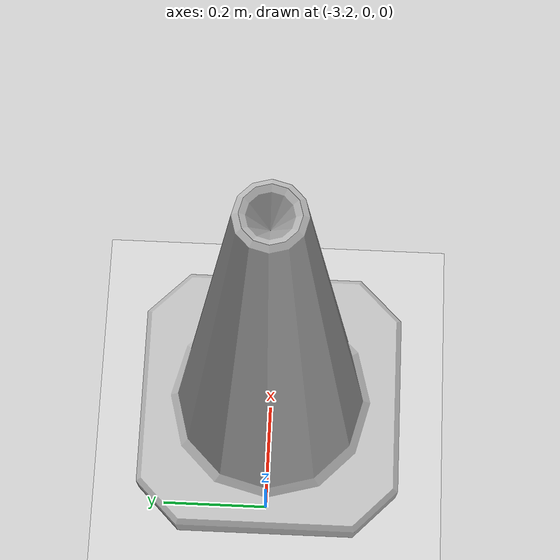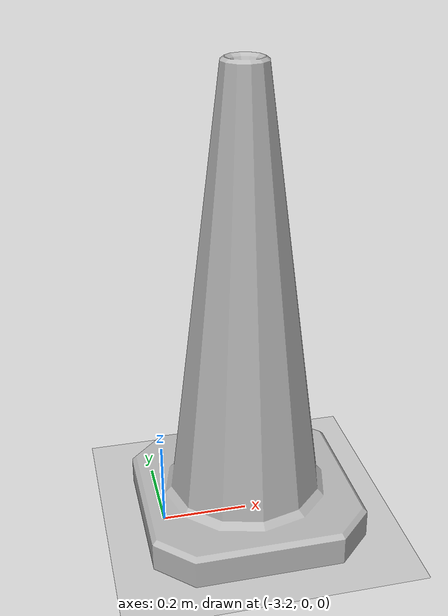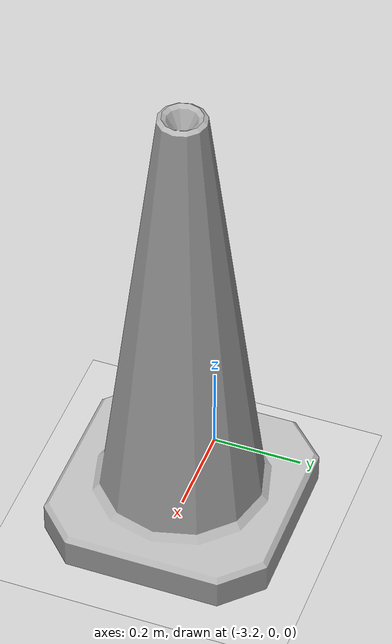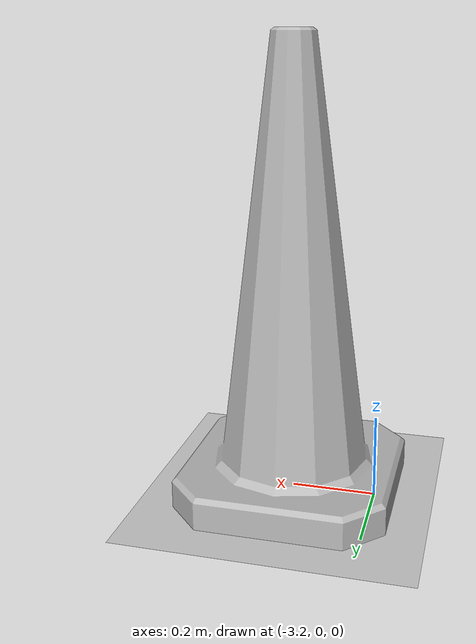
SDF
<?xml_version = "1.0"?>
<sdf version="1.4">

	<world name="default">

		<physics name='default_physics' default='0' type='ode'>
			<max_step_size>0.001</max_step_size>
			<real_time_factor>1.0</real_time_factor>
			<!--
				setar o real_time_update_rate a 250 para computador com 4 cores.
				setar o real_time_update_rate a 500 para computador com mais cores.
			-->
			<real_time_update_rate>500</real_time_update_rate>
			<ode>
				<constraints>
					<contact_max_correcting_vel>10000.0</contact_max_correcting_vel>
				</constraints>
			</ode>
		</physics>

		<scene>
			<sky>
				<clouds>
					<speed>12</speed>
				</clouds>
			</sky>

			<shadows>0</shadows>
		</scene>

		<include>
			<uri>model://ground_plane</uri>
		</include>

		<include>
			<uri>model://sun</uri>
		</include>

		<include>
			<uri>model://construction_cone</uri>
			<pose>-3 0 0 0 0 0</pose>
		</include>

	</world>
</sdf>

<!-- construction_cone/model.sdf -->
<sdf version="1.5">
  <model name="Construction Cone">
    <link name="link">
      <collision name="collision">
        <geometry>
          <mesh>
            <scale>10 10 10</scale>
            <uri>file://isr-testbed/construction_cone/meshes/construction_cone.dae</uri>
          </mesh>
        </geometry>
      </collision>
      <visual name="visual">
        <geometry>
          <mesh>
            <scale>10 10 10</scale>
            <uri>file://isr-testbed/construction_cone/meshes/construction_cone.dae</uri>
          </mesh>
        </geometry>
      </visual>
    </link>
  </model>
</sdf>
